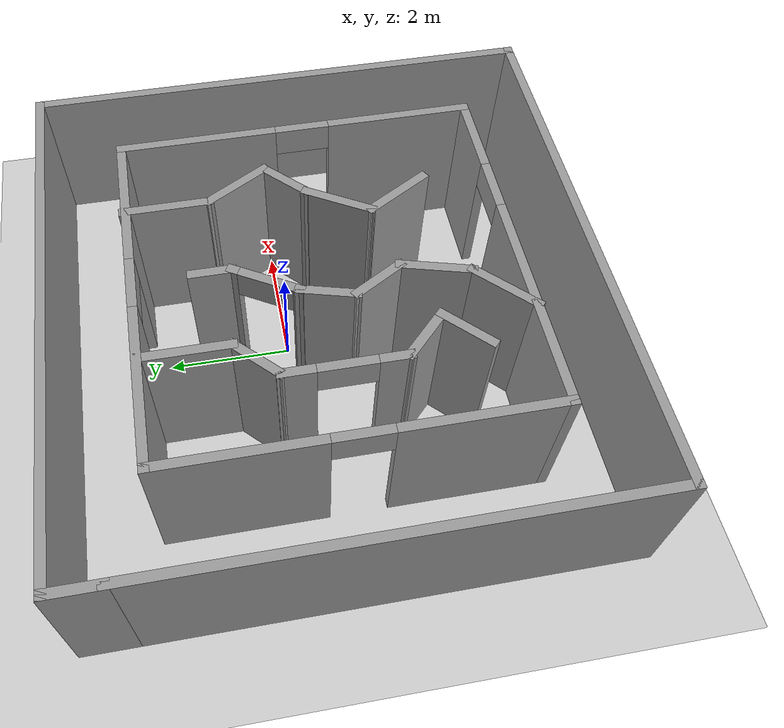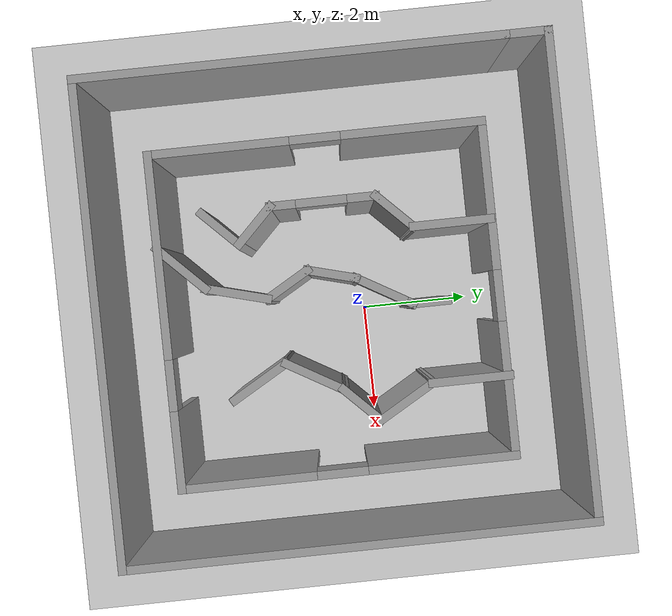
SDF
<sdf version="1.7">
 <world name="default">
  <light name="sun" type="directional">
   <pose>0 0 10 0 -0 0</pose>
   <diffuse>0.8 0.8 0.8 1</diffuse>
   <specular>0.2 0.2 0.2 1</specular>
   <attenuation>
    <range>1000</range>
    <constant>0.9</constant>
    <linear>0.01</linear>
    <quadratic>0.001</quadratic>
   </attenuation>
   <direction>-0.5 0.1 -0.9</direction>
   <spot><inner_angle>0</inner_angle><outer_angle>0</outer_angle><falloff>0</falloff></spot>
  </light>
  <model name="ground_plane">
   <static>1</static>
   <link name="link">
    <collision name="collision">
     <geometry><plane><normal>0 0 1</normal><size>100 100</size></plane></geometry>
     <surface>
      <contact><collide_bitmask>65535</collide_bitmask></contact>
      <friction><ode><mu>100</mu><mu2>50</mu2></ode></friction>
     </surface>
    </collision>
    <visual name="visual">
     <cast_shadows>0</cast_shadows>
     <geometry><plane><normal>0 0 1</normal><size>100 100</size></plane></geometry>
     <material>
      <script><uri>file://media/materials/scripts/gazebo.material</uri><name>Gazebo/Grey</name></script>
     </material>
    </visual>
   </link>
  </model>
  <gravity>0 0 -9.8</gravity>
  <magnetic_field>6e-06 2.3e-05 -4.2e-05</magnetic_field>
  <atmosphere type="adiabatic"/>
  <physics type="ode">
   <max_step_size>0.001</max_step_size>
   <real_time_factor>1</real_time_factor>
   <real_time_update_rate>1000</real_time_update_rate>
  </physics>
  <scene><ambient>0.4 0.4 0.4 1</ambient><background>0.7 0.7 0.7 1</background><shadows>1</shadows></scene>
  <spherical_coordinates>
   <surface_model>EARTH_WGS84</surface_model>
   <latitude_deg>0</latitude_deg>
   <longitude_deg>0</longitude_deg>
   <elevation>0</elevation>
   <heading_deg>0</heading_deg>
  </spherical_coordinates>
  <model name="Untitled">
   <pose>1.01999 -0.561009 0 0 -0 0</pose>
   <link name="Wall_0">
    <pose>-1.12825 -2.99709 0 0 -0 0</pose>
    <visual name="Wall_0_Visual_0">
     <pose>-1.17097 0 1.25 0 -0 0</pose>
     <geometry><box><size>3.65806 0.15 2.5</size></box></geometry>
     <material>
      <script><uri>file://media/materials/scripts/gazebo.material</uri><name>Gazebo/Grey</name></script>
      <ambient>1 1 1 1</ambient>
     </material>
     <meta><layer>0</layer></meta>
    </visual>
    <collision name="Wall_0_Collision_0">
     <geometry><box><size>3.65806 0.15 2.5</size></box></geometry>
     <pose>-1.17097 0 1.25 0 -0 0</pose>
    </collision>
    <visual name="Wall_0_Visual_1">
     <pose>2.27903 0 1.25 0 -0 0</pose>
     <geometry><box><size>1.44194 0.15 2.5</size></box></geometry>
     <material>
      <script><uri>file://media/materials/scripts/gazebo.material</uri><name>Gazebo/Grey</name></script>
      <ambient>1 1 1 1</ambient>
     </material>
     <meta><layer>0</layer></meta>
    </visual>
    <collision name="Wall_0_Collision_1">
     <geometry><box><size>1.44194 0.15 2.5</size></box></geometry>
     <pose>2.27903 0 1.25 0 -0 0</pose>
    </collision>
    <visual name="Wall_0_Visual_2">
     <pose>1.10806 0 2.25 0 -0 0</pose>
     <geometry><box><size>0.9 0.15 0.5</size></box></geometry>
     <material>
      <script><uri>file://media/materials/scripts/gazebo.material</uri><name>Gazebo/Grey</name></script>
      <ambient>1 1 1 1</ambient>
     </material>
     <meta><layer>0</layer></meta>
    </visual>
    <collision name="Wall_0_Collision_2">
     <geometry><box><size>0.9 0.15 0.5</size></box></geometry>
     <pose>1.10806 0 2.25 0 -0 0</pose>
    </collision>
   </link>
   <link name="Wall_20">
    <collision name="Wall_20_Collision">
     <geometry><box><size>1.5 0.15 2.5</size></box></geometry>
     <pose>0 0 1.25 0 -0 0</pose>
    </collision>
    <visual name="Wall_20_Visual">
     <pose>0 0 1.25 0 -0 0</pose>
     <geometry><box><size>1.5 0.15 2.5</size></box></geometry>
     <material>
      <script><uri>file://media/materials/scripts/gazebo.material</uri><name>Gazebo/Grey</name></script>
      <ambient>1 1 1 1</ambient>
     </material>
     <meta><layer>0</layer></meta>
    </visual>
    <pose>-2.34637 2.15846 0 0 -0 -1.5708</pose>
   </link>
   <link name="Wall_21">
    <collision name="Wall_21_Collision">
     <geometry><box><size>1 0.15 2.5</size></box></geometry>
     <pose>0 0 1.25 0 -0 0</pose>
    </collision>
    <visual name="Wall_21_Visual">
     <pose>0 0 1.25 0 -0 0</pose>
     <geometry><box><size>1 0.15 2.5</size></box></geometry>
     <material>
      <script><uri>file://media/materials/scripts/gazebo.material</uri><name>Gazebo/Grey</name></script>
      <ambient>1 1 1 1</ambient>
     </material>
     <meta><layer>0</layer></meta>
    </visual>
    <pose>-2.64689 1.18294 0 0 -0 -2.35619</pose>
   </link>
   <link name="Wall_22">
    <pose>-2.94741 -0.042581 0 0 -0 -1.5708</pose>
    <visual name="Wall_22_Visual_0">
     <pose>-0.711345 0 1.25 0 -0 0</pose>
     <geometry><box><size>0.57731 0.15 2.5</size></box></geometry>
     <material>
      <script><uri>file://media/materials/scripts/gazebo.material</uri><name>Gazebo/Grey</name></script>
      <ambient>1 1 1 1</ambient>
     </material>
     <meta><layer>0</layer></meta>
    </visual>
    <collision name="Wall_22_Collision_0">
     <geometry><box><size>0.57731 0.15 2.5</size></box></geometry>
     <pose>-0.711345 0 1.25 0 -0 0</pose>
    </collision>
    <visual name="Wall_22_Visual_1">
     <pose>0.738655 0 1.25 0 -0 0</pose>
     <geometry><box><size>0.52269 0.15 2.5</size></box></geometry>
     <material>
      <script><uri>file://media/materials/scripts/gazebo.material</uri><name>Gazebo/Grey</name></script>
      <ambient>1 1 1 1</ambient>
     </material>
     <meta><layer>0</layer></meta>
    </visual>
    <collision name="Wall_22_Collision_1">
     <geometry><box><size>0.52269 0.15 2.5</size></box></geometry>
     <pose>0.738655 0 1.25 0 -0 0</pose>
    </collision>
    <visual name="Wall_22_Visual_2">
     <pose>0.02731 0 2.25 0 -0 0</pose>
     <geometry><box><size>0.9 0.15 0.5</size></box></geometry>
     <material>
      <script><uri>file://media/materials/scripts/gazebo.material</uri><name>Gazebo/Grey</name></script>
      <ambient>1 1 1 1</ambient>
     </material>
     <meta><layer>0</layer></meta>
    </visual>
    <collision name="Wall_22_Collision_2">
     <geometry><box><size>0.9 0.15 0.5</size></box></geometry>
     <pose>0.02731 0 2.25 0 -0 0</pose>
    </collision>
   </link>
   <link name="Wall_23">
    <collision name="Wall_23_Collision">
     <geometry><box><size>1 0.15 2.5</size></box></geometry>
     <pose>0 0 1.25 0 -0 0</pose>
    </collision>
    <visual name="Wall_23_Visual">
     <pose>0 0 1.25 0 -0 0</pose>
     <geometry><box><size>1 0.15 2.5</size></box></geometry>
     <material>
      <script><uri>file://media/materials/scripts/gazebo.material</uri><name>Gazebo/Grey</name></script>
      <ambient>1 1 1 1</ambient>
     </material>
     <meta><layer>0</layer></meta>
    </visual>
    <pose>-2.64689 -1.2681 0 0 -0 -0.785398</pose>
   </link>
   <link name="Wall_24">
    <collision name="Wall_24_Collision">
     <geometry><box><size>1 0.15 2.5</size></box></geometry>
     <pose>0 0 1.25 0 -0 0</pose>
    </collision>
    <visual name="Wall_24_Visual">
     <pose>0 0 1.25 0 -0 0</pose>
     <geometry><box><size>1 0.15 2.5</size></box></geometry>
     <material>
      <script><uri>file://media/materials/scripts/gazebo.material</uri><name>Gazebo/Grey</name></script>
      <ambient>1 1 1 1</ambient>
     </material>
     <meta><layer>0</layer></meta>
    </visual>
    <pose>-2.64689 -1.86914 0 0 -0 -2.35619</pose>
   </link>
   <link name="Wall_28">
    <collision name="Wall_28_Collision">
     <geometry><box><size>1.25 0.15 2.5</size></box></geometry>
     <pose>0 0 1.25 0 -0 0</pose>
    </collision>
    <visual name="Wall_28_Visual">
     <pose>0 0 1.25 0 -0 0</pose>
     <geometry><box><size>1.25 0.15 2.5</size></box></geometry>
     <material>
      <script><uri>file://media/materials/scripts/gazebo.material</uri><name>Gazebo/Grey</name></script>
      <ambient>1 1 1 1</ambient>
     </material>
     <meta><layer>0</layer></meta>
    </visual>
    <pose>-2.02743 -2.61931 0 0 -0 0.785398</pose>
   </link>
   <link name="Wall_29">
    <collision name="Wall_29_Collision">
     <geometry><box><size>1.25 0.15 2.5</size></box></geometry>
     <pose>0 0 1.25 0 -0 0</pose>
    </collision>
    <visual name="Wall_29_Visual">
     <pose>0 0 1.25 0 -0 0</pose>
     <geometry><box><size>1.25 0.15 2.5</size></box></geometry>
     <material>
      <script><uri>file://media/materials/scripts/gazebo.material</uri><name>Gazebo/Grey</name></script>
      <ambient>1 1 1 1</ambient>
     </material>
     <meta><layer>0</layer></meta>
    </visual>
    <pose>-1.49617 -1.69914 0 0 -0 1.309</pose>
   </link>
   <link name="Wall_30">
    <collision name="Wall_30_Collision">
     <geometry><box><size>1 0.15 2.5</size></box></geometry>
     <pose>0 0 1.25 0 -0 0</pose>
    </collision>
    <visual name="Wall_30_Visual">
     <pose>0 0 1.25 0 -0 0</pose>
     <geometry><box><size>1 0.15 2.5</size></box></geometry>
     <material>
      <script><uri>file://media/materials/scripts/gazebo.material</uri><name>Gazebo/Grey</name></script>
      <ambient>1 1 1 1</ambient>
     </material>
     <meta><layer>0</layer></meta>
    </visual>
    <pose>-1.56631 -0.799825 0 0 -0 2.0944</pose>
   </link>
   <link name="Wall_31">
    <collision name="Wall_31_Collision">
     <geometry><box><size>1 0.15 2.5</size></box></geometry>
     <pose>0 0 1.25 0 -0 0</pose>
    </collision>
    <visual name="Wall_31_Visual">
     <pose>0 0 1.25 0 -0 0</pose>
     <geometry><box><size>1 0.15 2.5</size></box></geometry>
     <material>
      <script><uri>file://media/materials/scripts/gazebo.material</uri><name>Gazebo/Grey</name></script>
      <ambient>1 1 1 1</ambient>
     </material>
     <meta><layer>0</layer></meta>
    </visual>
    <pose>-1.66882 -0.021246 0 0 -0 1.309</pose>
   </link>
   <link name="Wall_32">
    <pose>-1.28382 0.865587 0 0 -0 1.0472</pose>
    <visual name="Wall_32_Visual_0">
     <pose>-0.545642 0 1.25 0 -0 0</pose>
     <geometry><box><size>0.158716 0.15 2.5</size></box></geometry>
     <material>
      <script><uri>file://media/materials/scripts/gazebo.material</uri><name>Gazebo/Grey</name></script>
      <ambient>1 1 1 1</ambient>
     </material>
     <meta><layer>0</layer></meta>
    </visual>
    <collision name="Wall_32_Collision_0">
     <geometry><box><size>0.158716 0.15 2.5</size></box></geometry>
     <pose>-0.545642 0 1.25 0 -0 0</pose>
    </collision>
    <visual name="Wall_32_Visual_1">
     <pose>0.529358 0 1.25 0 -0 0</pose>
     <geometry><box><size>0.191284 0.15 2.5</size></box></geometry>
     <material>
      <script><uri>file://media/materials/scripts/gazebo.material</uri><name>Gazebo/Grey</name></script>
      <ambient>1 1 1 1</ambient>
     </material>
     <meta><layer>0</layer></meta>
    </visual>
    <collision name="Wall_32_Collision_1">
     <geometry><box><size>0.191284 0.15 2.5</size></box></geometry>
     <pose>0.529358 0 1.25 0 -0 0</pose>
    </collision>
    <visual name="Wall_32_Visual_2">
     <pose>-0.016284 0 2.25 0 -0 0</pose>
     <geometry><box><size>0.9 0.15 0.5</size></box></geometry>
     <material>
      <script><uri>file://media/materials/scripts/gazebo.material</uri><name>Gazebo/Grey</name></script>
      <ambient>1 1 1 1</ambient>
     </material>
     <meta><layer>0</layer></meta>
    </visual>
    <collision name="Wall_32_Collision_2">
     <geometry><box><size>0.9 0.15 0.5</size></box></geometry>
     <pose>-0.016284 0 2.25 0 -0 0</pose>
    </collision>
   </link>
   <link name="Wall_33">
    <collision name="Wall_33_Collision">
     <geometry><box><size>0.75 0.15 2.5</size></box></geometry>
     <pose>0 0 1.25 0 -0 0</pose>
    </collision>
    <visual name="Wall_33_Visual">
     <pose>0 0 1.25 0 -0 0</pose>
     <geometry><box><size>0.75 0.15 2.5</size></box></geometry>
     <material>
      <script><uri>file://media/materials/scripts/gazebo.material</uri><name>Gazebo/Grey</name></script>
      <ambient>1 1 1 1</ambient>
     </material>
     <meta><layer>0</layer></meta>
    </visual>
    <pose>-1.00882 1.6419 0 0 -0 1.5708</pose>
   </link>
   <link name="Wall_35">
    <collision name="Wall_35_Collision">
     <geometry><box><size>1.5 0.15 2.5</size></box></geometry>
     <pose>0 0 1.25 0 -0 0</pose>
    </collision>
    <visual name="Wall_35_Visual">
     <pose>0 0 1.25 0 -0 0</pose>
     <geometry><box><size>1.5 0.15 2.5</size></box></geometry>
     <material>
      <script><uri>file://media/materials/scripts/gazebo.material</uri><name>Gazebo/Grey</name></script>
      <ambient>1 1 1 1</ambient>
     </material>
     <meta><layer>0</layer></meta>
    </visual>
    <pose>0.399566 2.21093 0 0 -0 -1.5708</pose>
   </link>
   <link name="Wall_36">
    <collision name="Wall_36_Collision">
     <geometry><box><size>1.25 0.15 2.5</size></box></geometry>
     <pose>0 0 1.25 0 -0 0</pose>
    </collision>
    <visual name="Wall_36_Visual">
     <pose>0 0 1.25 0 -0 0</pose>
     <geometry><box><size>1.25 0.15 2.5</size></box></geometry>
     <material>
      <script><uri>file://media/materials/scripts/gazebo.material</uri><name>Gazebo/Grey</name></script>
      <ambient>1 1 1 1</ambient>
     </material>
     <meta><layer>0</layer></meta>
    </visual>
    <pose>0.674566 1.05961 0 0 -0 -1.0472</pose>
   </link>
   <link name="Wall_37">
    <collision name="Wall_37_Collision">
     <geometry><box><size>1 0.15 2.5</size></box></geometry>
     <pose>0 0 1.25 0 -0 0</pose>
    </collision>
    <visual name="Wall_37_Visual">
     <pose>0 0 1.25 0 -0 0</pose>
     <geometry><box><size>1 0.15 2.5</size></box></geometry>
     <material>
      <script><uri>file://media/materials/scripts/gazebo.material</uri><name>Gazebo/Grey</name></script>
      <ambient>1 1 1 1</ambient>
     </material>
     <meta><layer>0</layer></meta>
    </visual>
    <pose>0.649046 0.282781 0 0 -0 -2.35619</pose>
   </link>
   <link name="Wall_38">
    <collision name="Wall_38_Collision">
     <geometry><box><size>1.25 0.15 2.5</size></box></geometry>
     <pose>0 0 1.25 0 -0 0</pose>
    </collision>
    <visual name="Wall_38_Visual">
     <pose>0 0 1.25 0 -0 0</pose>
     <geometry><box><size>1.25 0.15 2.5</size></box></geometry>
     <material>
      <script><uri>file://media/materials/scripts/gazebo.material</uri><name>Gazebo/Grey</name></script>
      <ambient>1 1 1 1</ambient>
     </material>
     <meta><layer>0</layer></meta>
    </visual>
    <pose>0.073525 -0.494053 0 0 -0 -2.0944</pose>
   </link>
   <link name="Wall_39">
    <collision name="Wall_39_Collision">
     <geometry><box><size>1.25 0.15 2.5</size></box></geometry>
     <pose>0 0 1.25 0 -0 0</pose>
    </collision>
    <visual name="Wall_39_Visual">
     <pose>0 0 1.25 0 -0 0</pose>
     <geometry><box><size>1.25 0.15 2.5</size></box></geometry>
     <material>
      <script><uri>file://media/materials/scripts/gazebo.material</uri><name>Gazebo/Grey</name></script>
      <ambient>1 1 1 1</ambient>
     </material>
     <meta><layer>0</layer></meta>
    </visual>
    <pose>0.073525 -1.44668 0 0 -0 -1.0472</pose>
   </link>
   <link name="Wall_4">
    <pose>-4.05325 -0.072095 0 0 -0 1.5708</pose>
    <visual name="Wall_4_Visual_0">
     <pose>-1.7239 0 1.25 0 -0 0</pose>
     <geometry><box><size>2.5522 0.15 2.5</size></box></geometry>
     <material>
      <script><uri>file://media/materials/scripts/gazebo.material</uri><name>Gazebo/Grey</name></script>
      <ambient>1 1 1 1</ambient>
     </material>
     <meta><layer>0</layer></meta>
    </visual>
    <collision name="Wall_4_Collision_0">
     <geometry><box><size>2.5522 0.15 2.5</size></box></geometry>
     <pose>-1.7239 0 1.25 0 -0 0</pose>
    </collision>
    <visual name="Wall_4_Visual_1">
     <pose>1.7261 0 1.25 0 -0 0</pose>
     <geometry><box><size>2.5478 0.15 2.5</size></box></geometry>
     <material>
      <script><uri>file://media/materials/scripts/gazebo.material</uri><name>Gazebo/Grey</name></script>
      <ambient>1 1 1 1</ambient>
     </material>
     <meta><layer>0</layer></meta>
    </visual>
    <collision name="Wall_4_Collision_1">
     <geometry><box><size>2.5478 0.15 2.5</size></box></geometry>
     <pose>1.7261 0 1.25 0 -0 0</pose>
    </collision>
    <visual name="Wall_4_Visual_2">
     <pose>0.002204 0 2.25 0 -0 0</pose>
     <geometry><box><size>0.9 0.15 0.5</size></box></geometry>
     <material>
      <script><uri>file://media/materials/scripts/gazebo.material</uri><name>Gazebo/Grey</name></script>
      <ambient>1 1 1 1</ambient>
     </material>
     <meta><layer>0</layer></meta>
    </visual>
    <collision name="Wall_4_Collision_2">
     <geometry><box><size>0.9 0.15 0.5</size></box></geometry>
     <pose>0.002204 0 2.25 0 -0 0</pose>
    </collision>
   </link>
   <link name="Wall_41">
    <collision name="Wall_41_Collision">
     <geometry><box><size>7.75 0.15 2.5</size></box></geometry>
     <pose>0 0 1.25 0 -0 0</pose>
    </collision>
    <visual name="Wall_41_Visual">
     <pose>0 0 1.25 0 -0 0</pose>
     <geometry><box><size>7.75 0.15 2.5</size></box></geometry>
     <material>
      <script><uri>file://media/materials/scripts/gazebo.material</uri><name>Gazebo/Grey</name></script>
      <ambient>1 1 1 1</ambient>
     </material>
     <meta><layer>0</layer></meta>
    </visual>
    <pose>-5.50546 -0.375 0 0 -0 -1.5708</pose>
   </link>
   <link name="Wall_42">
    <collision name="Wall_42_Collision">
     <geometry><box><size>8.75 0.15 2.5</size></box></geometry>
     <pose>0 0 1.25 0 -0 0</pose>
    </collision>
    <visual name="Wall_42_Visual">
     <pose>0 0 1.25 0 -0 0</pose>
     <geometry><box><size>8.75 0.15 2.5</size></box></geometry>
     <material>
      <script><uri>file://media/materials/scripts/gazebo.material</uri><name>Gazebo/Grey</name></script>
      <ambient>1 1 1 1</ambient>
     </material>
     <meta><layer>0</layer></meta>
    </visual>
    <pose>-1.20546 -4.175 0 0 -0 0</pose>
   </link>
   <link name="Wall_43">
    <collision name="Wall_43_Collision">
     <geometry><box><size>8.5 0.15 2.5</size></box></geometry>
     <pose>0 0 1.25 0 -0 0</pose>
    </collision>
    <visual name="Wall_43_Visual">
     <pose>0 0 1.25 0 -0 0</pose>
     <geometry><box><size>8.5 0.15 2.5</size></box></geometry>
     <material>
      <script><uri>file://media/materials/scripts/gazebo.material</uri><name>Gazebo/Grey</name></script>
      <ambient>1 1 1 1</ambient>
     </material>
     <meta><layer>0</layer></meta>
    </visual>
    <pose>3.09454 -0 0 0 -0 1.5708</pose>
   </link>
   <link name="Wall_44">
    <collision name="Wall_44_Collision">
     <geometry><box><size>8.75 0.15 2.5</size></box></geometry>
     <pose>0 0 1.25 0 -0 0</pose>
    </collision>
    <visual name="Wall_44_Visual">
     <pose>0 0 1.25 0 -0 0</pose>
     <geometry><box><size>8.75 0.15 2.5</size></box></geometry>
     <material>
      <script><uri>file://media/materials/scripts/gazebo.material</uri><name>Gazebo/Grey</name></script>
      <ambient>1 1 1 1</ambient>
     </material>
     <meta><layer>0</layer></meta>
    </visual>
    <pose>-1.20546 4.175 0 0 -0 3.14159</pose>
   </link>
   <link name="Wall_46">
    <collision name="Wall_46_Collision">
     <geometry><box><size>0.9 0.15 2.5</size></box></geometry>
     <pose>0 0 1.25 0 -0 0</pose>
    </collision>
    <visual name="Wall_46_Visual">
     <pose>0 0 1.25 0 -0 0</pose>
     <geometry><box><size>0.9 0.15 2.5</size></box></geometry>
     <material>
      <script><uri>file://media/materials/scripts/gazebo.material</uri><name>Gazebo/Grey</name></script>
      <ambient>1 1 1 1</ambient>
     </material>
     <meta><layer>0</layer></meta>
    </visual>
    <pose>-5.50546 3.8 0 0 -0 1.5708</pose>
   </link>
   <link name="Wall_6">
    <pose>1.79675 -0.072095 0 0 -0 1.5708</pose>
    <visual name="Wall_6_Visual_0">
     <pose>-1.77637 0 1.25 0 -0 0</pose>
     <geometry><box><size>2.44726 0.15 2.5</size></box></geometry>
     <material>
      <script><uri>file://media/materials/scripts/gazebo.material</uri><name>Gazebo/Grey</name></script>
      <ambient>1 1 1 1</ambient>
     </material>
     <meta><layer>0</layer></meta>
    </visual>
    <collision name="Wall_6_Collision_0">
     <geometry><box><size>2.44726 0.15 2.5</size></box></geometry>
     <pose>-1.77637 0 1.25 0 -0 0</pose>
    </collision>
    <visual name="Wall_6_Visual_1">
     <pose>1.67363 0 1.25 0 -0 0</pose>
     <geometry><box><size>2.65274 0.15 2.5</size></box></geometry>
     <material>
      <script><uri>file://media/materials/scripts/gazebo.material</uri><name>Gazebo/Grey</name></script>
      <ambient>1 1 1 1</ambient>
     </material>
     <meta><layer>0</layer></meta>
    </visual>
    <collision name="Wall_6_Collision_1">
     <geometry><box><size>2.65274 0.15 2.5</size></box></geometry>
     <pose>1.67363 0 1.25 0 -0 0</pose>
    </collision>
    <visual name="Wall_6_Visual_2">
     <pose>-0.102737 0 2.25 0 -0 0</pose>
     <geometry><box><size>0.9 0.15 0.5</size></box></geometry>
     <material>
      <script><uri>file://media/materials/scripts/gazebo.material</uri><name>Gazebo/Grey</name></script>
      <ambient>1 1 1 1</ambient>
     </material>
     <meta><layer>0</layer></meta>
    </visual>
    <collision name="Wall_6_Collision_2">
     <geometry><box><size>0.9 0.15 0.5</size></box></geometry>
     <pose>-0.102737 0 2.25 0 -0 0</pose>
    </collision>
   </link>
   <link name="Wall_8">
    <pose>-1.12825 2.8529 0 0 -0 0</pose>
    <visual name="Wall_8_Visual_0">
     <pose>-1.66069 0 1.25 0 -0 0</pose>
     <geometry><box><size>2.67861 0.15 2.5</size></box></geometry>
     <material>
      <script><uri>file://media/materials/scripts/gazebo.material</uri><name>Gazebo/Grey</name></script>
      <ambient>1 1 1 1</ambient>
     </material>
     <meta><layer>0</layer></meta>
    </visual>
    <collision name="Wall_8_Collision_0">
     <geometry><box><size>2.67861 0.15 2.5</size></box></geometry>
     <pose>-1.66069 0 1.25 0 -0 0</pose>
    </collision>
    <visual name="Wall_8_Visual_1">
     <pose>1.78931 0 1.25 0 -0 0</pose>
     <geometry><box><size>2.42139 0.15 2.5</size></box></geometry>
     <material>
      <script><uri>file://media/materials/scripts/gazebo.material</uri><name>Gazebo/Grey</name></script>
      <ambient>1 1 1 1</ambient>
     </material>
     <meta><layer>0</layer></meta>
    </visual>
    <collision name="Wall_8_Collision_1">
     <geometry><box><size>2.42139 0.15 2.5</size></box></geometry>
     <pose>1.78931 0 1.25 0 -0 0</pose>
    </collision>
    <visual name="Wall_8_Visual_2">
     <pose>0.128613 0 2.25 0 -0 0</pose>
     <geometry><box><size>0.9 0.15 0.5</size></box></geometry>
     <material>
      <script><uri>file://media/materials/scripts/gazebo.material</uri><name>Gazebo/Grey</name></script>
      <ambient>1 1 1 1</ambient>
     </material>
     <meta><layer>0</layer></meta>
    </visual>
    <collision name="Wall_8_Collision_2">
     <geometry><box><size>0.9 0.15 0.5</size></box></geometry>
     <pose>0.128613 0 2.25 0 -0 0</pose>
    </collision>
   </link>
   <static>1</static>
  </model>
 </world>
</sdf>
